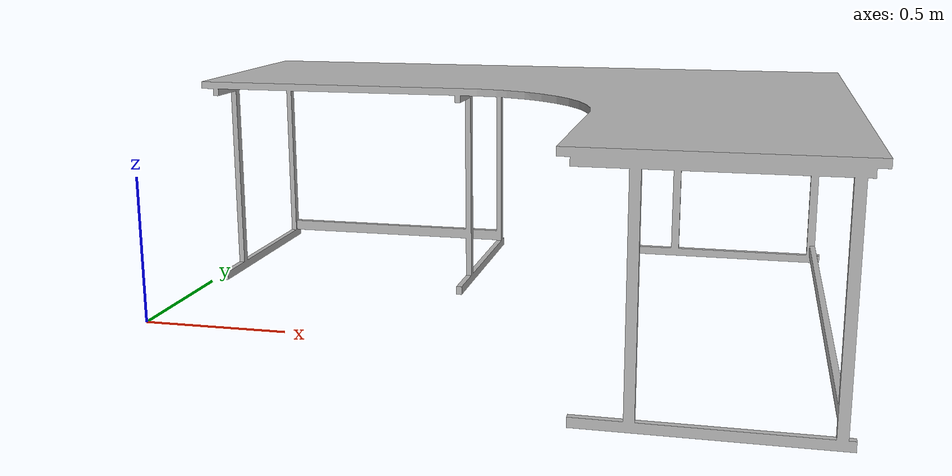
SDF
<?xml version="1.0"?>
<sdf version="1.5">
<model name="stul_v">
	<pose>0 0 0 0 0 0</pose>
	<static>true</static>
	<link name="stul_v_collision">
		<collision name="stul_v_collision">
		<geometry>
			<mesh>
				<uri>model://stul_v/meshes/model.dae</uri>

			</mesh>
		</geometry>
		</collision>
	<visual name="stul_v_mesh">
	<cast_shadows>false</cast_shadows>
		<geometry>
			<mesh>
				<uri> model://stul_v/meshes/model.dae</uri>

			</mesh>
		</geometry>
		<material>
		<script>
			<uri> model://stul_v/material/scripts</uri>
			<uri> model://stul_v/material/textures</uri>
			<name>stul_v/Diffuse</name>
		</script>
		</material>

	</visual>
</link>
</model>
</sdf>
